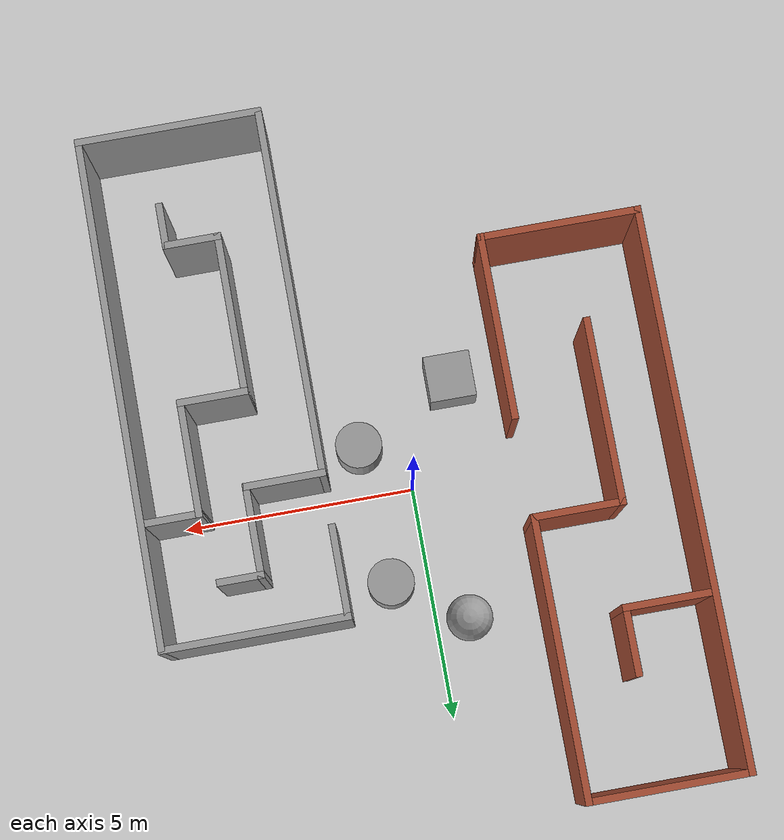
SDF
<sdf version="1.7">
 <world name="default">
  <light name="sun" type="directional">
   <pose>0 0 10 0 -0 0</pose>
   <diffuse>0.8 0.8 0.8 1</diffuse>
   <specular>0.2 0.2 0.2 1</specular>
   <attenuation>
    <range>1000</range>
    <constant>0.9</constant>
    <linear>0.01</linear>
    <quadratic>0.001</quadratic>
   </attenuation>
   <direction>-0.5 0.1 -0.9</direction>
   <spot><inner_angle>0</inner_angle><outer_angle>0</outer_angle><falloff>0</falloff></spot>
  </light>
  <model name="ground_plane">
   <static>1</static>
   <link name="link">
    <collision name="collision">
     <geometry><plane><normal>0 0 1</normal><size>100 100</size></plane></geometry>
     <surface>
      <contact><collide_bitmask>65535</collide_bitmask></contact>
      <friction><ode><mu>100</mu><mu2>50</mu2></ode></friction>
     </surface>
    </collision>
    <visual name="visual">
     <cast_shadows>0</cast_shadows>
     <geometry><plane><normal>0 0 1</normal><size>100 100</size></plane></geometry>
     <material>
      <script><uri>file://media/materials/scripts/gazebo.material</uri><name>Gazebo/Grey</name></script>
     </material>
    </visual>
   </link>
  </model>
  <gravity>0 0 -9.8</gravity>
  <magnetic_field>6e-06 2.3e-05 -4.2e-05</magnetic_field>
  <atmosphere type="adiabatic"/>
  <physics type="ode">
   <max_step_size>0.001</max_step_size>
   <real_time_factor>1</real_time_factor>
   <real_time_update_rate>1000</real_time_update_rate>
  </physics>
  <scene><ambient>0.4 0.4 0.4 1</ambient><background>0.7 0.7 0.7 1</background><shadows>1</shadows></scene>
  <spherical_coordinates>
   <surface_model>EARTH_WGS84</surface_model>
   <latitude_deg>0</latitude_deg>
   <longitude_deg>0</longitude_deg>
   <elevation>0</elevation>
   <heading_deg>0</heading_deg>
  </spherical_coordinates>
  <model name="myworld1">
   <pose>-4.43425 1.22615 0 0 -0 1.57249</pose>
   <link name="Wall_0">
    <collision name="Wall_0_Collision">
     <geometry><box><size>3.5 0.15 2.5</size></box></geometry>
     <pose>0 0 1.25 0 -0 0</pose>
    </collision>
    <visual name="Wall_0_Visual">
     <pose>0 0 1.25 0 -0 0</pose>
     <geometry><box><size>3.5 0.15 2.5</size></box></geometry>
     <material>
      <script><uri>file://media/materials/scripts/gazebo.material</uri><name>Gazebo/Bricks</name></script>
      <ambient>0.996078 0.47451 0.0196078 1</ambient>
     </material>
     <meta><layer>0</layer></meta>
    </visual>
    <pose>-5.925 -0.4725 0 0 -0 -1.5708</pose>
   </link>
   <link name="Wall_1">
    <collision name="Wall_1_Collision">
     <geometry><box><size>4 0.15 2.5</size></box></geometry>
     <pose>0 0 1.25 0 -0 0</pose>
    </collision>
    <visual name="Wall_1_Visual">
     <pose>0 0 1.25 0 -0 0</pose>
     <geometry><box><size>4 0.15 2.5</size></box></geometry>
     <material>
      <script><uri>file://media/materials/scripts/gazebo.material</uri><name>Gazebo/Bricks</name></script>
      <ambient>0.996078 0.47451 0.0196078 1</ambient>
     </material>
     <meta><layer>0</layer></meta>
    </visual>
    <pose>-4 -2.1475 0 0 -0 0</pose>
   </link>
   <link name="Wall_10">
    <collision name="Wall_10_Collision">
     <geometry><box><size>1.5 0.15 2.5</size></box></geometry>
     <pose>0 0 1.25 0 -0 0</pose>
    </collision>
    <visual name="Wall_10_Visual">
     <pose>0 0 1.25 0 -0 0</pose>
     <geometry><box><size>1.5 0.15 2.5</size></box></geometry>
     <material>
      <script><uri>file://media/materials/scripts/gazebo.material</uri><name>Gazebo/Bricks</name></script>
      <ambient>0.996078 0.47451 0.0196078 1</ambient>
     </material>
     <meta><layer>0</layer></meta>
    </visual>
    <pose>2.9 -0.6575 0 0 -0 0</pose>
   </link>
   <link name="Wall_3">
    <collision name="Wall_3_Collision">
     <geometry><box><size>12 0.15 2.5</size></box></geometry>
     <pose>0 0 1.25 0 -0 0</pose>
    </collision>
    <visual name="Wall_3_Visual">
     <pose>0 0 1.25 0 -0 0</pose>
     <geometry><box><size>12 0.15 2.5</size></box></geometry>
     <material>
      <script><uri>file://media/materials/scripts/gazebo.material</uri><name>Gazebo/Bricks</name></script>
      <ambient>0.996078 0.47451 0.0196078 1</ambient>
     </material>
     <meta><layer>0</layer></meta>
    </visual>
    <pose>0 1.2025 0 0 -0 0</pose>
   </link>
   <link name="Wall_4">
    <collision name="Wall_4_Collision">
     <geometry><box><size>3.5 0.15 2.5</size></box></geometry>
     <pose>0 0 1.25 0 -0 0</pose>
    </collision>
    <visual name="Wall_4_Visual">
     <pose>0 0 1.25 0 -0 0</pose>
     <geometry><box><size>3.5 0.15 2.5</size></box></geometry>
     <material>
      <script><uri>file://media/materials/scripts/gazebo.material</uri><name>Gazebo/Bricks</name></script>
      <ambient>0.996078 0.47451 0.0196078 1</ambient>
     </material>
     <meta><layer>0</layer></meta>
    </visual>
    <pose>5.925 -0.4725 0 0 -0 -1.5708</pose>
   </link>
   <link name="Wall_5">
    <collision name="Wall_5_Collision">
     <geometry><box><size>6 0.15 2.5</size></box></geometry>
     <pose>0 0 1.25 0 -0 0</pose>
    </collision>
    <visual name="Wall_5_Visual">
     <pose>0 0 1.25 0 -0 0</pose>
     <geometry><box><size>6 0.15 2.5</size></box></geometry>
     <material>
      <script><uri>file://media/materials/scripts/gazebo.material</uri><name>Gazebo/Bricks</name></script>
      <ambient>0.996078 0.47451 0.0196078 1</ambient>
     </material>
     <meta><layer>0</layer></meta>
    </visual>
    <pose>3 -2.1475 0 0 -0 3.14159</pose>
   </link>
   <link name="Wall_6">
    <collision name="Wall_6_Collision">
     <geometry><box><size>2 0.15 2.5</size></box></geometry>
     <pose>0 0 1.25 0 -0 0</pose>
    </collision>
    <visual name="Wall_6_Visual">
     <pose>0 0 1.25 0 -0 0</pose>
     <geometry><box><size>2 0.15 2.5</size></box></geometry>
     <material>
      <script><uri>file://media/materials/scripts/gazebo.material</uri><name>Gazebo/Bricks</name></script>
      <ambient>0.996078 0.47451 0.0196078 1</ambient>
     </material>
     <meta><layer>0</layer></meta>
    </visual>
    <pose>0.075 -1.2225 0 0 -0 1.5708</pose>
   </link>
   <link name="Wall_7">
    <collision name="Wall_7_Collision">
     <geometry><box><size>4 0.15 2.5</size></box></geometry>
     <pose>0 0 1.25 0 -0 0</pose>
    </collision>
    <visual name="Wall_7_Visual">
     <pose>0 0 1.25 0 -0 0</pose>
     <geometry><box><size>4 0.15 2.5</size></box></geometry>
     <material>
      <script><uri>file://media/materials/scripts/gazebo.material</uri><name>Gazebo/Bricks</name></script>
      <ambient>0.996078 0.47451 0.0196078 1</ambient>
     </material>
     <meta><layer>0</layer></meta>
    </visual>
    <pose>-1.85 -0.2975 0 0 -0 3.14159</pose>
   </link>
   <link name="Wall_9">
    <collision name="Wall_9_Collision">
     <geometry><box><size>2 0.15 2.5</size></box></geometry>
     <pose>0 0 1.25 0 -0 0</pose>
    </collision>
    <visual name="Wall_9_Visual">
     <pose>0 0 1.25 0 -0 0</pose>
     <geometry><box><size>2 0.15 2.5</size></box></geometry>
     <material>
      <script><uri>file://media/materials/scripts/gazebo.material</uri><name>Gazebo/Bricks</name></script>
      <ambient>0.996078 0.47451 0.0196078 1</ambient>
     </material>
     <meta><layer>0</layer></meta>
    </visual>
    <pose>2.225 0.2675 0 0 -0 -1.5708</pose>
   </link>
   <static>1</static>
  </model>
  <model name="myworld">
   <pose>4.06194 -2.78304 0 0 0 -1.56683</pose>
   <link name="Wall_0">
    <collision name="Wall_0_Collision">
     <geometry><box><size>4 0.15 2.5</size></box></geometry>
     <pose>0 0 1.25 0 -0 0</pose>
    </collision>
    <visual name="Wall_0_Visual">
     <pose>0 0 1.25 0 -0 0</pose>
     <geometry><box><size>4 0.15 2.5</size></box></geometry>
     <material>
      <script><uri>file://media/materials/scripts/gazebo.material</uri><name>Gazebo/Grey</name></script>
      <ambient>1 1 1 1</ambient>
     </material>
     <meta><layer>0</layer></meta>
    </visual>
    <pose>-5.425 -0.2975 0 0 -0 -1.5708</pose>
   </link>
   <link name="Wall_1">
    <collision name="Wall_1_Collision">
     <geometry><box><size>2 0.15 2.5</size></box></geometry>
     <pose>0 0 1.25 0 -0 0</pose>
    </collision>
    <visual name="Wall_1_Visual">
     <pose>0 0 1.25 0 -0 0</pose>
     <geometry><box><size>2 0.15 2.5</size></box></geometry>
     <material>
      <script><uri>file://media/materials/scripts/gazebo.material</uri><name>Gazebo/Grey</name></script>
      <ambient>1 1 1 1</ambient>
     </material>
     <meta><layer>0</layer></meta>
    </visual>
    <pose>-4.5 -2.2225 0 0 -0 0</pose>
   </link>
   <link name="Wall_11">
    <collision name="Wall_11_Collision">
     <geometry><box><size>1.25 0.15 2.5</size></box></geometry>
     <pose>0 0 1.25 0 -0 0</pose>
    </collision>
    <visual name="Wall_11_Visual">
     <pose>0 0 1.25 0 -0 0</pose>
     <geometry><box><size>1.25 0.15 2.5</size></box></geometry>
     <material>
      <script><uri>file://media/materials/scripts/gazebo.material</uri><name>Gazebo/Grey</name></script>
      <ambient>1 1 1 1</ambient>
     </material>
     <meta><layer>0</layer></meta>
    </visual>
    <pose>-2.80769 0.968268 0 0 -0 -1.5708</pose>
   </link>
   <link name="Wall_12">
    <collision name="Wall_12_Collision">
     <geometry><box><size>2.5 0.15 2.5</size></box></geometry>
     <pose>0 0 1.25 0 -0 0</pose>
    </collision>
    <visual name="Wall_12_Visual">
     <pose>0 0 1.25 0 -0 0</pose>
     <geometry><box><size>2.5 0.15 2.5</size></box></geometry>
     <material>
      <script><uri>file://media/materials/scripts/gazebo.material</uri><name>Gazebo/Grey</name></script>
      <ambient>1 1 1 1</ambient>
     </material>
     <meta><layer>0</layer></meta>
    </visual>
    <pose>-1.63269 0.418268 0 0 -0 0</pose>
   </link>
   <link name="Wall_13">
    <collision name="Wall_13_Collision">
     <geometry><box><size>1.5 0.15 2.5</size></box></geometry>
     <pose>0 0 1.25 0 -0 0</pose>
    </collision>
    <visual name="Wall_13_Visual">
     <pose>0 0 1.25 0 -0 0</pose>
     <geometry><box><size>1.5 0.15 2.5</size></box></geometry>
     <material>
      <script><uri>file://media/materials/scripts/gazebo.material</uri><name>Gazebo/Grey</name></script>
      <ambient>1 1 1 1</ambient>
     </material>
     <meta><layer>0</layer></meta>
    </visual>
    <pose>-0.457694 -0.256732 0 0 -0 -1.5708</pose>
   </link>
   <link name="Wall_14">
    <collision name="Wall_14_Collision">
     <geometry><box><size>3.5 0.15 2.5</size></box></geometry>
     <pose>0 0 1.25 0 -0 0</pose>
    </collision>
    <visual name="Wall_14_Visual">
     <pose>0 0 1.25 0 -0 0</pose>
     <geometry><box><size>3.5 0.15 2.5</size></box></geometry>
     <material>
      <script><uri>file://media/materials/scripts/gazebo.material</uri><name>Gazebo/Grey</name></script>
      <ambient>1 1 1 1</ambient>
     </material>
     <meta><layer>0</layer></meta>
    </visual>
    <pose>1.21731 -0.931732 0 0 -0 0</pose>
   </link>
   <link name="Wall_15">
    <collision name="Wall_15_Collision">
     <geometry><box><size>1.25 0.15 2.5</size></box></geometry>
     <pose>0 0 1.25 0 -0 0</pose>
    </collision>
    <visual name="Wall_15_Visual">
     <pose>0 0 1.25 0 -0 0</pose>
     <geometry><box><size>1.25 0.15 2.5</size></box></geometry>
     <material>
      <script><uri>file://media/materials/scripts/gazebo.material</uri><name>Gazebo/Grey</name></script>
      <ambient>1 1 1 1</ambient>
     </material>
     <meta><layer>0</layer></meta>
    </visual>
    <pose>2.89231 -0.381732 0 0 -0 1.5708</pose>
   </link>
   <link name="Wall_16">
    <collision name="Wall_16_Collision">
     <geometry><box><size>1 0.15 2.5</size></box></geometry>
     <pose>0 0 1.25 0 -0 0</pose>
    </collision>
    <visual name="Wall_16_Visual">
     <pose>0 0 1.25 0 -0 0</pose>
     <geometry><box><size>1 0.15 2.5</size></box></geometry>
     <material>
      <script><uri>file://media/materials/scripts/gazebo.material</uri><name>Gazebo/Grey</name></script>
      <ambient>1 1 1 1</ambient>
     </material>
     <meta><layer>0</layer></meta>
    </visual>
    <pose>3.31731 0.168268 0 0 -0 0</pose>
   </link>
   <link name="Wall_4">
    <collision name="Wall_4_Collision">
     <geometry><box><size>11 0.15 2.5</size></box></geometry>
     <pose>0 0 1.25 0 -0 0</pose>
    </collision>
    <visual name="Wall_4_Visual">
     <pose>0 0 1.25 0 -0 0</pose>
     <geometry><box><size>11 0.15 2.5</size></box></geometry>
     <material>
      <script><uri>file://media/materials/scripts/gazebo.material</uri><name>Gazebo/Grey</name></script>
      <ambient>1 1 1 1</ambient>
     </material>
     <meta><layer>0</layer></meta>
    </visual>
    <pose>-0 1.6275 0 0 -0 0</pose>
   </link>
   <link name="Wall_5">
    <collision name="Wall_5_Collision">
     <geometry><box><size>4 0.15 2.5</size></box></geometry>
     <pose>0 0 1.25 0 -0 0</pose>
    </collision>
    <visual name="Wall_5_Visual">
     <pose>0 0 1.25 0 -0 0</pose>
     <geometry><box><size>4 0.15 2.5</size></box></geometry>
     <material>
      <script><uri>file://media/materials/scripts/gazebo.material</uri><name>Gazebo/Grey</name></script>
      <ambient>1 1 1 1</ambient>
     </material>
     <meta><layer>0</layer></meta>
    </visual>
    <pose>5.425 -0.2975 0 0 -0 -1.5708</pose>
   </link>
   <link name="Wall_6">
    <collision name="Wall_6_Collision">
     <geometry><box><size>8 0.15 2.5</size></box></geometry>
     <pose>0 0 1.25 0 -0 0</pose>
    </collision>
    <visual name="Wall_6_Visual">
     <pose>0 0 1.25 0 -0 0</pose>
     <geometry><box><size>8 0.15 2.5</size></box></geometry>
     <material>
      <script><uri>file://media/materials/scripts/gazebo.material</uri><name>Gazebo/Grey</name></script>
      <ambient>1 1 1 1</ambient>
     </material>
     <meta><layer>0</layer></meta>
    </visual>
    <pose>1.5 -2.2225 0 0 -0 3.14159</pose>
   </link>
   <link name="Wall_7">
    <collision name="Wall_7_Collision">
     <geometry><box><size>1.75 0.15 2.5</size></box></geometry>
     <pose>0 0 1.25 0 -0 0</pose>
    </collision>
    <visual name="Wall_7_Visual">
     <pose>0 0 1.25 0 -0 0</pose>
     <geometry><box><size>1.75 0.15 2.5</size></box></geometry>
     <material>
      <script><uri>file://media/materials/scripts/gazebo.material</uri><name>Gazebo/Grey</name></script>
      <ambient>1 1 1 1</ambient>
     </material>
     <meta><layer>0</layer></meta>
    </visual>
    <pose>-2.425 -1.4225 0 0 -0 1.5708</pose>
   </link>
   <link name="Wall_8">
    <collision name="Wall_8_Collision">
     <geometry><box><size>2 0.15 2.5</size></box></geometry>
     <pose>0 0 1.25 0 -0 0</pose>
    </collision>
    <visual name="Wall_8_Visual">
     <pose>0 0 1.25 0 -0 0</pose>
     <geometry><box><size>2 0.15 2.5</size></box></geometry>
     <material>
      <script><uri>file://media/materials/scripts/gazebo.material</uri><name>Gazebo/Grey</name></script>
      <ambient>1 1 1 1</ambient>
     </material>
     <meta><layer>0</layer></meta>
    </visual>
    <pose>-3.35 -0.6225 0 0 -0 3.14159</pose>
   </link>
   <link name="Wall_9">
    <collision name="Wall_9_Collision">
     <geometry><box><size>1 0.15 2.5</size></box></geometry>
     <pose>0 0 1.25 0 -0 0</pose>
    </collision>
    <visual name="Wall_9_Visual">
     <pose>0 0 1.25 0 -0 0</pose>
     <geometry><box><size>1 0.15 2.5</size></box></geometry>
     <material>
      <script><uri>file://media/materials/scripts/gazebo.material</uri><name>Gazebo/Grey</name></script>
      <ambient>1 1 1 1</ambient>
     </material>
     <meta><layer>0</layer></meta>
    </visual>
    <pose>-4.275 -0.1975 0 0 -0 1.5708</pose>
   </link>
   <static>1</static>
  </model>
  <model name="unit_box">
   <pose>-1.18845 -2.17246 0.499995 -1e-05 -0 -0</pose>
   <link name="link">
    <inertial>
     <mass>1</mass>
     <inertia>
      <ixx>0.166667</ixx>
      <ixy>0</ixy>
      <ixz>0</ixz>
      <iyy>0.166667</iyy>
      <iyz>0</iyz>
      <izz>0.166667</izz>
     </inertia>
    </inertial>
    <collision name="collision"><geometry><box><size>1 1 1</size></box></geometry></collision>
    <visual name="visual">
     <geometry><box><size>1 1 1</size></box></geometry>
     <material>
      <script><name>Gazebo/Grey</name><uri>file://media/materials/scripts/gazebo.material</uri></script>
     </material>
    </visual>
   </link>
  </model>
  <model name="unit_sphere">
   <pose>-0.701557 2.97266 0.5 0 -0 0</pose>
   <link name="link">
    <inertial>
     <mass>1</mass>
     <inertia><ixx>0.1</ixx><ixy>0</ixy><ixz>0</ixz><iyy>0.1</iyy><iyz>0</iyz><izz>0.1</izz></inertia>
    </inertial>
    <collision name="collision"><geometry><sphere><radius>0.5</radius></sphere></geometry></collision>
    <visual name="visual">
     <geometry><sphere><radius>0.5</radius></sphere></geometry>
     <material>
      <script><name>Gazebo/Grey</name><uri>file://media/materials/scripts/gazebo.material</uri></script>
     </material>
    </visual>
   </link>
  </model>
  <model name="unit_cylinder">
   <pose>0.993539 -1.0417 0.499993 -3e-06 -4e-06 -0</pose>
   <link name="link">
    <inertial>
     <mass>1</mass>
     <inertia><ixx>0.145833</ixx><ixy>0</ixy><ixz>0</ixz><iyy>0.145833</iyy><iyz>0</iyz><izz>0.125</izz></inertia>
    </inertial>
    <collision name="collision">
     <geometry><cylinder><radius>0.5</radius><length>1</length></cylinder></geometry>
    </collision>
    <visual name="visual">
     <geometry><cylinder><radius>0.5</radius><length>1</length></cylinder></geometry>
     <material>
      <script><name>Gazebo/Grey</name><uri>file://media/materials/scripts/gazebo.material</uri></script>
     </material>
    </visual>
   </link>
  </model>
  <model name="unit_cylinder_0">
   <pose>0.823437 1.96753 0.499997 3e-06 4e-06 -0</pose>
   <link name="link">
    <inertial>
     <mass>1</mass>
     <inertia><ixx>0.145833</ixx><ixy>0</ixy><ixz>0</ixz><iyy>0.145833</iyy><iyz>0</iyz><izz>0.125</izz></inertia>
    </inertial>
    <collision name="collision">
     <geometry><cylinder><radius>0.5</radius><length>1</length></cylinder></geometry>
    </collision>
    <visual name="visual">
     <geometry><cylinder><radius>0.5</radius><length>1</length></cylinder></geometry>
     <material>
      <script><name>Gazebo/Grey</name><uri>file://media/materials/scripts/gazebo.material</uri></script>
     </material>
    </visual>
   </link>
  </model>
 </world>
</sdf>
